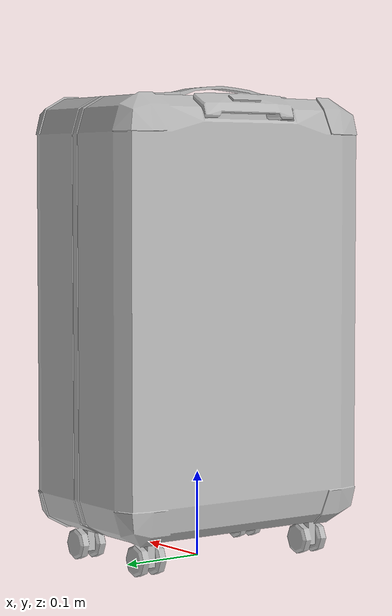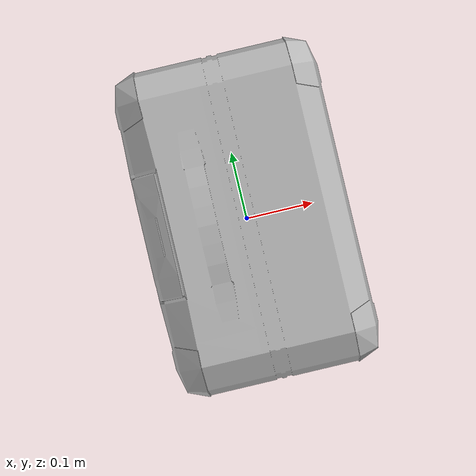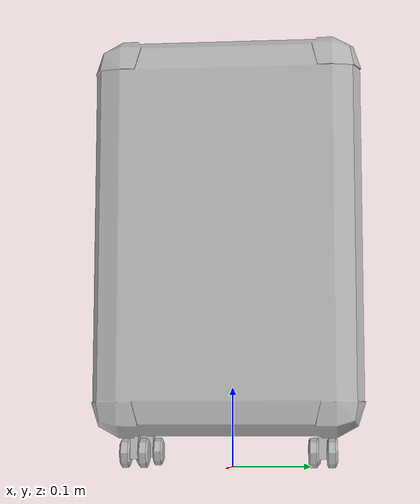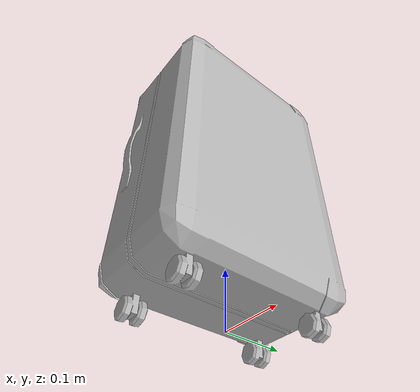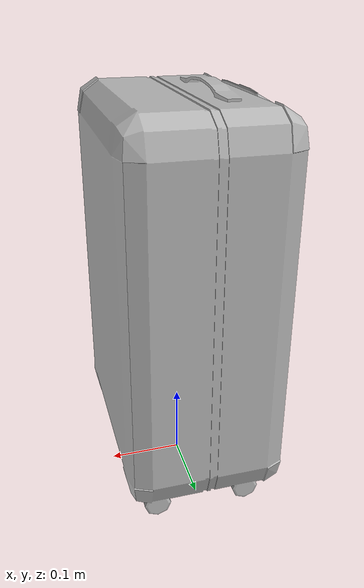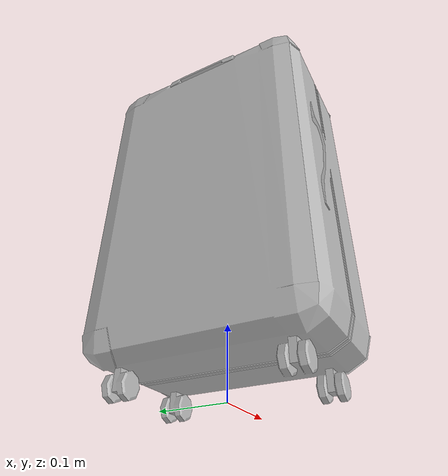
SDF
<?xml version='1.0' encoding='utf-8'?>
<sdf version="1.6">
  <model name="Suitcase2">
   <static>true</static>
    <link name="body">
      <pose>0 0 0 0 0 0</pose>

      <visual name="visual">
        <geometry>
          <mesh>
            <uri>model://Suitcase2/meshes/Suitcase2.obj</uri>
          </mesh>
        </geometry>
      </visual>

      <collision name="collision">
        <geometry>
          <mesh>
            <uri>model://Suitcase2/meshes/Suitcase2_Col.obj</uri>
          </mesh>
        </geometry>
      </collision>

    </link>
  </model>
</sdf>
